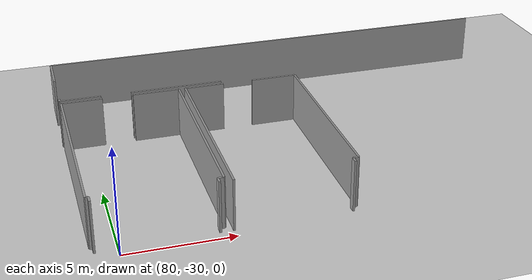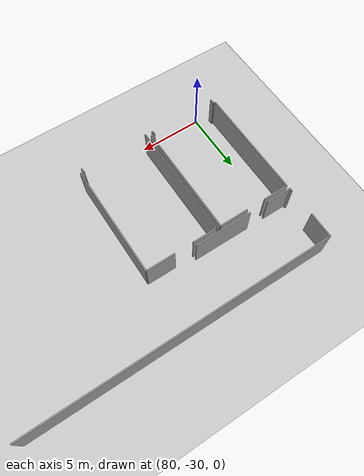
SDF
<sdf version="1.6">
 <world name="default">
  <model name="ground_plane">
   <static>1</static>
   <link name="link">
    <collision name="collision">
     <geometry><plane><normal>0 0 1</normal><size>100 100</size></plane></geometry>
     <surface><friction><ode><mu>100</mu><mu2>50</mu2></ode></friction></surface>
    </collision>
    <visual name="visual">
     <cast_shadows>0</cast_shadows>
     <geometry><plane><normal>0 0 1</normal><size>100 100</size></plane></geometry>
     <material>
      <script><uri>file://media/materials/scripts/gazebo.material</uri><name>Gazebo/Grey</name></script>
     </material>
    </visual>
   </link>
  </model>
  <model name="50010536_PLAN3">
   <static>1</static>
   <link name="Wall_934">
    <collision name="Wall_934_Collision">
     <geometry><box><size>8.89134368155 0.1 2.5</size></box></geometry>
     <pose>4.44567184078 0 1.25 0 0 0</pose>
    </collision>
    <visual name="Wall_934_Visual">
     <pose>4.44567184078 0 1.25 0 0 0</pose>
     <geometry><box><size>8.89134368155 0.1 2.5</size></box></geometry>
     <material>
      <script><uri>file://media/materials/scripts/gazebo.material</uri><name>Gazebo/Grey</name></script>
      <ambient>1 1 1 1</ambient>
     </material>
    </visual>
    <pose>181.364822398 -58.8307653239 0 0 0 1.57079632679</pose>
   </link>
   <link name="Wall_935">
    <collision name="Wall_935_Collision">
     <geometry><box><size>1.9700980859 0.1 2.5</size></box></geometry>
     <pose>0.985049042948 0 1.25 0 0 0</pose>
    </collision>
    <visual name="Wall_935_Visual">
     <pose>0.985049042948 0 1.25 0 0 0</pose>
     <geometry><box><size>1.9700980859 0.1 2.5</size></box></geometry>
     <material>
      <script><uri>file://media/materials/scripts/gazebo.material</uri><name>Gazebo/Grey</name></script>
      <ambient>1 1 1 1</ambient>
     </material>
    </visual>
    <pose>181.364822398 -49.9394216424 0 0 0 0.0</pose>
   </link>
   <link name="Wall_936">
    <collision name="Wall_936_Collision">
     <geometry><box><size>2.27076786338 0.1 2.5</size></box></geometry>
     <pose>1.13538393169 0 1.25 0 0 0</pose>
    </collision>
    <visual name="Wall_936_Visual">
     <pose>1.13538393169 0 1.25 0 0 0</pose>
     <geometry><box><size>2.27076786338 0.1 2.5</size></box></geometry>
     <material>
      <script><uri>file://media/materials/scripts/gazebo.material</uri><name>Gazebo/Grey</name></script>
      <ambient>1 1 1 1</ambient>
     </material>
    </visual>
    <pose>184.825318224 -49.9394216424 0 0 0 0.0</pose>
   </link>
   <link name="Wall_937">
    <collision name="Wall_937_Collision">
     <geometry><box><size>8.9357838936 0.1 2.5</size></box></geometry>
     <pose>4.4678919468 0 1.25 0 0 0</pose>
    </collision>
    <visual name="Wall_937_Visual">
     <pose>4.4678919468 0 1.25 0 0 0</pose>
     <geometry><box><size>8.9357838936 0.1 2.5</size></box></geometry>
     <material>
      <script><uri>file://media/materials/scripts/gazebo.material</uri><name>Gazebo/Grey</name></script>
      <ambient>1 1 1 1</ambient>
     </material>
    </visual>
    <pose>187.096086087 -49.9394216424 0 0 0 -1.57079632679</pose>
   </link>
   <link name="Wall_938">
    <collision name="Wall_938_Collision">
     <geometry><box><size>0.267657048535 0.1 2.5</size></box></geometry>
     <pose>0.133828524268 0 1.25 0 0 0</pose>
    </collision>
    <visual name="Wall_938_Visual">
     <pose>0.133828524268 0 1.25 0 0 0</pose>
     <geometry><box><size>0.267657048535 0.1 2.5</size></box></geometry>
     <material>
      <script><uri>file://media/materials/scripts/gazebo.material</uri><name>Gazebo/Grey</name></script>
      <ambient>1 1 1 1</ambient>
     </material>
    </visual>
    <pose>187.096086087 -58.875205536 0 0 0 3.14159265359</pose>
   </link>
   <link name="Wall_939">
    <collision name="Wall_939_Collision">
     <geometry><box><size>0.327587848776 0.1 2.5</size></box></geometry>
     <pose>0.163793924388 0 1.25 0 0 0</pose>
    </collision>
    <visual name="Wall_939_Visual">
     <pose>0.163793924388 0 1.25 0 0 0</pose>
     <geometry><box><size>0.327587848776 0.1 2.5</size></box></geometry>
     <material>
      <script><uri>file://media/materials/scripts/gazebo.material</uri><name>Gazebo/Grey</name></script>
      <ambient>1 1 1 1</ambient>
     </material>
    </visual>
    <pose>186.828429039 -58.875205536 0 0 0 -1.57079632679</pose>
   </link>
   <link name="Wall_940">
    <collision name="Wall_940_Collision">
     <geometry><box><size>0.356029584484 0.1 2.5</size></box></geometry>
     <pose>0.178014792242 0 1.25 0 0 0</pose>
    </collision>
    <visual name="Wall_940_Visual">
     <pose>0.178014792242 0 1.25 0 0 0</pose>
     <geometry><box><size>0.356029584484 0.1 2.5</size></box></geometry>
     <material>
      <script><uri>file://media/materials/scripts/gazebo.material</uri><name>Gazebo/Grey</name></script>
      <ambient>1 1 1 1</ambient>
     </material>
    </visual>
    <pose>181.502967971 -59.2027933848 0 0 0 1.57079632679</pose>
   </link>
   <link name="Wall_941">
    <collision name="Wall_941_Collision">
     <geometry><box><size>0.139068870368 0.1 2.5</size></box></geometry>
     <pose>0.069534435184 0 1.25 0 0 0</pose>
    </collision>
    <visual name="Wall_941_Visual">
     <pose>0.069534435184 0 1.25 0 0 0</pose>
     <geometry><box><size>0.139068870368 0.1 2.5</size></box></geometry>
     <material>
      <script><uri>file://media/materials/scripts/gazebo.material</uri><name>Gazebo/Grey</name></script>
      <ambient>1 1 1 1</ambient>
     </material>
    </visual>
    <pose>181.502967971 -58.8467638003 0 0 0 3.02629743381</pose>
   </link>
   <link name="Wall_942">
    <collision name="Wall_942_Collision">
     <geometry><box><size>9.26337174237 0.1 2.5</size></box></geometry>
     <pose>4.63168587119 0 1.25 0 0 0</pose>
    </collision>
    <visual name="Wall_942_Visual">
     <pose>4.63168587119 0 1.25 0 0 0</pose>
     <geometry><box><size>9.26337174237 0.1 2.5</size></box></geometry>
     <material>
      <script><uri>file://media/materials/scripts/gazebo.material</uri><name>Gazebo/Grey</name></script>
      <ambient>1 1 1 1</ambient>
     </material>
    </visual>
    <pose>187.424435768 -59.2088880424 0 0 0 1.57079632679</pose>
   </link>
   <link name="Wall_943">
    <collision name="Wall_943_Collision">
     <geometry><box><size>1.91905532806 0.1 2.5</size></box></geometry>
     <pose>0.959527664032 0 1.25 0 0 0</pose>
    </collision>
    <visual name="Wall_943_Visual">
     <pose>0.959527664032 0 1.25 0 0 0</pose>
     <geometry><box><size>1.91905532806 0.1 2.5</size></box></geometry>
     <material>
      <script><uri>file://media/materials/scripts/gazebo.material</uri><name>Gazebo/Grey</name></script>
      <ambient>1 1 1 1</ambient>
     </material>
    </visual>
    <pose>187.424435768 -49.9455163 0 0 0 0.0</pose>
   </link>
   <link name="Wall_944">
    <collision name="Wall_944_Collision">
     <geometry><box><size>2.2534996667 0.1 2.5</size></box></geometry>
     <pose>1.12674983335 0 1.25 0 0 0</pose>
    </collision>
    <visual name="Wall_944_Visual">
     <pose>1.12674983335 0 1.25 0 0 0</pose>
     <geometry><box><size>2.2534996667 0.1 2.5</size></box></geometry>
     <material>
      <script><uri>file://media/materials/scripts/gazebo.material</uri><name>Gazebo/Grey</name></script>
      <ambient>1 1 1 1</ambient>
     </material>
    </visual>
    <pose>190.819921912 -49.9455163 0 0 0 0.0</pose>
   </link>
   <link name="Wall_945">
    <collision name="Wall_945_Collision">
     <geometry><box><size>8.92968923595 0.1 2.5</size></box></geometry>
     <pose>4.46484461797 0 1.25 0 0 0</pose>
    </collision>
    <visual name="Wall_945_Visual">
     <pose>4.46484461797 0 1.25 0 0 0</pose>
     <geometry><box><size>8.92968923595 0.1 2.5</size></box></geometry>
     <material>
      <script><uri>file://media/materials/scripts/gazebo.material</uri><name>Gazebo/Grey</name></script>
      <ambient>1 1 1 1</ambient>
     </material>
    </visual>
    <pose>193.073421579 -49.9455163 0 0 0 -1.57079632679</pose>
   </link>
   <link name="Wall_946">
    <collision name="Wall_946_Collision">
     <geometry><box><size>0.261816334952 0.1 2.5</size></box></geometry>
     <pose>0.130908167476 0 1.25 0 0 0</pose>
    </collision>
    <visual name="Wall_946_Visual">
     <pose>0.130908167476 0 1.25 0 0 0</pose>
     <geometry><box><size>0.261816334952 0.1 2.5</size></box></geometry>
     <material>
      <script><uri>file://media/materials/scripts/gazebo.material</uri><name>Gazebo/Grey</name></script>
      <ambient>1 1 1 1</ambient>
     </material>
    </visual>
    <pose>193.073421579 -58.875205536 0 0 0 3.14159265359</pose>
   </link>
   <link name="Wall_947">
    <collision name="Wall_947_Collision">
     <geometry><box><size>0.33749166746 0.1 2.5</size></box></geometry>
     <pose>0.16874583373 0 1.25 0 0 0</pose>
    </collision>
    <visual name="Wall_947_Visual">
     <pose>0.16874583373 0 1.25 0 0 0</pose>
     <geometry><box><size>0.33749166746 0.1 2.5</size></box></geometry>
     <material>
      <script><uri>file://media/materials/scripts/gazebo.material</uri><name>Gazebo/Grey</name></script>
      <ambient>1 1 1 1</ambient>
     </material>
    </visual>
    <pose>192.811605244 -58.875205536 0 0 0 -1.57079632679</pose>
   </link>
   <link name="Wall_960">
    <collision name="Wall_960_Collision">
     <geometry><box><size>23.6736818716 0.1 2.5</size></box></geometry>
     <pose>11.8368409358 0 1.25 0 0 0</pose>
    </collision>
    <visual name="Wall_960_Visual">
     <pose>11.8368409358 0 1.25 0 0 0</pose>
     <geometry><box><size>23.6736818716 0.1 2.5</size></box></geometry>
     <material>
      <script><uri>file://media/materials/scripts/gazebo.material</uri><name>Gazebo/Grey</name></script>
      <ambient>1 1 1 1</ambient>
     </material>
    </visual>
    <pose>181.348823922 -45.2323143828 0 0 0 0.0</pose>
   </link>
   <link name="Wall_966">
    <collision name="Wall_966_Collision">
     <geometry><box><size>4.51309399105 0.1 2.5</size></box></geometry>
     <pose>2.25654699552 0 1.25 0 0 0</pose>
    </collision>
    <visual name="Wall_966_Visual">
     <pose>2.25654699552 0 1.25 0 0 0</pose>
     <geometry><box><size>4.51309399105 0.1 2.5</size></box></geometry>
     <material>
      <script><uri>file://media/materials/scripts/gazebo.material</uri><name>Gazebo/Grey</name></script>
      <ambient>1 1 1 1</ambient>
     </material>
    </visual>
    <pose>189.297019331 -49.639259753 0 0 0 3.14159265359</pose>
   </link>
   <link name="Wall_967">
    <collision name="Wall_967_Collision">
     <geometry><box><size>1.9822874012 0.1 2.5</size></box></geometry>
     <pose>0.9911437006 0 1.25 0 0 0</pose>
    </collision>
    <visual name="Wall_967_Visual">
     <pose>0.9911437006 0 1.25 0 0 0</pose>
     <geometry><box><size>1.9822874012 0.1 2.5</size></box></geometry>
     <material>
      <script><uri>file://media/materials/scripts/gazebo.material</uri><name>Gazebo/Grey</name></script>
      <ambient>1 1 1 1</ambient>
     </material>
    </visual>
    <pose>183.308764245 -49.639259753 0 0 0 3.14159265359</pose>
   </link>
   <link name="Wall_968">
    <collision name="Wall_968_Collision">
     <geometry><box><size>0.251404628131 0.1 2.5</size></box></geometry>
     <pose>0.125702314065 0 1.25 0 0 0</pose>
    </collision>
    <visual name="Wall_968_Visual">
     <pose>0.125702314065 0 1.25 0 0 0</pose>
     <geometry><box><size>0.251404628131 0.1 2.5</size></box></geometry>
     <material>
      <script><uri>file://media/materials/scripts/gazebo.material</uri><name>Gazebo/Grey</name></script>
      <ambient>1 1 1 1</ambient>
     </material>
    </visual>
    <pose>181.326476843 -49.639259753 0 0 0 1.57079632679</pose>
   </link>
   <link name="Wall_969">
    <collision name="Wall_969_Collision">
     <geometry><box><size>1.99815690051 0.1 2.5</size></box></geometry>
     <pose>0.999078450254 0 1.25 0 0 0</pose>
    </collision>
    <visual name="Wall_969_Visual">
     <pose>0.999078450254 0 1.25 0 0 0</pose>
     <geometry><box><size>1.99815690051 0.1 2.5</size></box></geometry>
     <material>
      <script><uri>file://media/materials/scripts/gazebo.material</uri><name>Gazebo/Grey</name></script>
      <ambient>1 1 1 1</ambient>
     </material>
    </visual>
    <pose>181.326476843 -47.2303463162 0 0 0 1.55961224814</pose>
   </link>
   <pose>-102.5 29.6500539631 0 0 0 0</pose>
  </model>
 </world>
</sdf>
